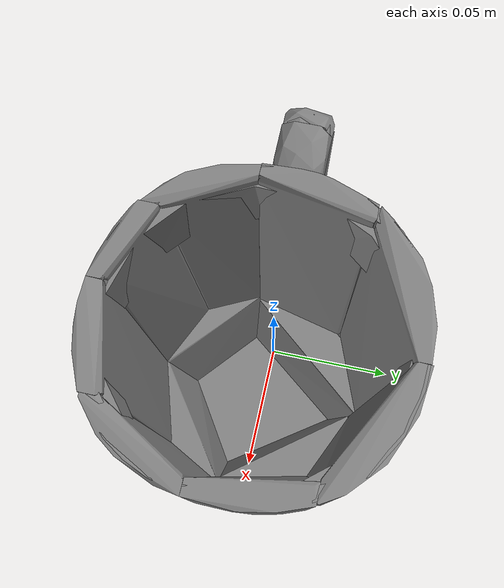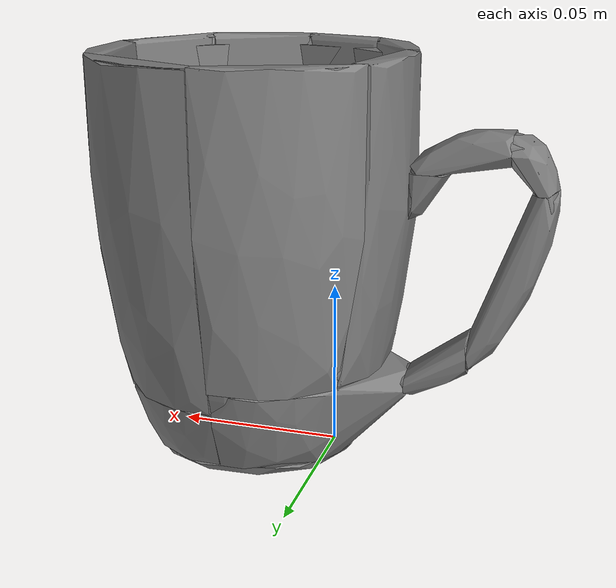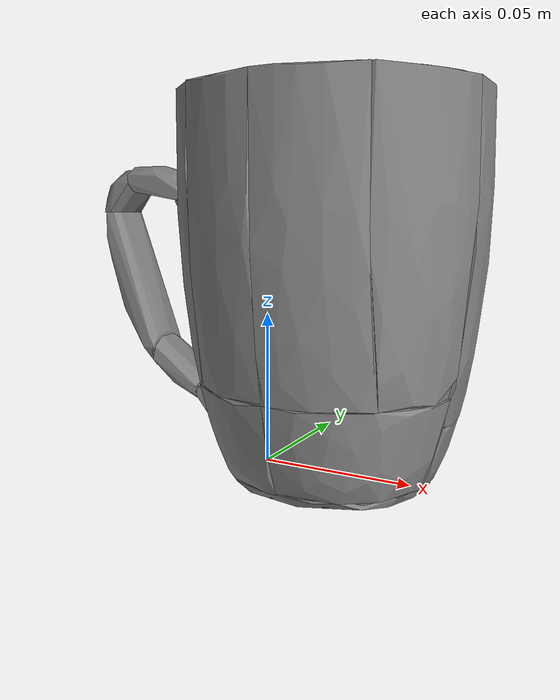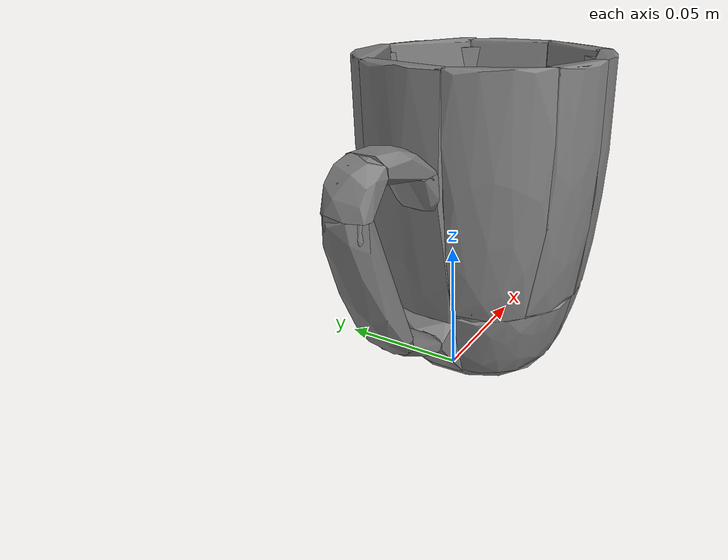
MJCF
<mujoco model="mug2">
  <asset>
    <mesh file="../../meshes/train/mug2/simple_mesh.stl" name="mug2_mesh" scale="1 1 1"/>
    <mesh file="../../meshes/train/mug2/mug2_hull_1.stl" name="mug2_hull_mesh_1" scale="1 1 1"/>
    <mesh file="../../meshes/train/mug2/mug2_hull_2.stl" name="mug2_hull_mesh_2" scale="1 1 1"/>
    <mesh file="../../meshes/train/mug2/mug2_hull_3.stl" name="mug2_hull_mesh_3" scale="1 1 1"/>
    <mesh file="../../meshes/train/mug2/mug2_hull_4.stl" name="mug2_hull_mesh_4" scale="1 1 1"/>
    <mesh file="../../meshes/train/mug2/mug2_hull_5.stl" name="mug2_hull_mesh_5" scale="1 1 1"/>
    <mesh file="../../meshes/train/mug2/mug2_hull_6.stl" name="mug2_hull_mesh_6" scale="1 1 1"/>
    <mesh file="../../meshes/train/mug2/mug2_hull_7.stl" name="mug2_hull_mesh_7" scale="1 1 1"/>
    <mesh file="../../meshes/train/mug2/mug2_hull_8.stl" name="mug2_hull_mesh_8" scale="1 1 1"/>
    <mesh file="../../meshes/train/mug2/mug2_hull_9.stl" name="mug2_hull_mesh_9" scale="1 1 1"/>
    <mesh file="../../meshes/train/mug2/mug2_hull_10.stl" name="mug2_hull_mesh_10" scale="1 1 1"/>
    <mesh file="../../meshes/train/mug2/mug2_hull_11.stl" name="mug2_hull_mesh_11" scale="1 1 1"/>
    <mesh file="../../meshes/train/mug2/mug2_hull_12.stl" name="mug2_hull_mesh_12" scale="1 1 1"/>
    <mesh file="../../meshes/train/mug2/mug2_hull_13.stl" name="mug2_hull_mesh_13" scale="1 1 1"/>
    <mesh file="../../meshes/train/mug2/mug2_hull_14.stl" name="mug2_hull_mesh_14" scale="1 1 1"/>
    <mesh file="../../meshes/train/mug2/mug2_hull_15.stl" name="mug2_hull_mesh_15" scale="1 1 1"/>
    <mesh file="../../meshes/train/mug2/mug2_hull_16.stl" name="mug2_hull_mesh_16" scale="1 1 1"/>
    <mesh file="../../meshes/train/mug2/mug2_hull_17.stl" name="mug2_hull_mesh_17" scale="1 1 1"/>
    <mesh file="../../meshes/train/mug2/mug2_hull_18.stl" name="mug2_hull_mesh_18" scale="1 1 1"/>
  </asset>
  <worldbody>
    <body>
      <body name="object">
        <geom pos="0 0 0" mesh="mug2_mesh" type="mesh" contype="0" conaffinity="0" group="1"/>
        <geom pos="0 0 0" mesh="mug2_hull_mesh_1" type="mesh" margin="0.001" solimp="0.998 0.998 0.001" solref="0.001 1" density="2000" friction="0.95 0.3 0.1" group="0" condim="4"/>
        <geom pos="0 0 0" mesh="mug2_hull_mesh_2" type="mesh" margin="0.001" solimp="0.998 0.998 0.001" solref="0.001 1" density="2000" friction="0.95 0.3 0.1" group="0" condim="4"/>
        <geom pos="0 0 0" mesh="mug2_hull_mesh_3" type="mesh" margin="0.001" solimp="0.998 0.998 0.001" solref="0.001 1" density="2000" friction="0.95 0.3 0.1" group="0" condim="4"/>
        <geom pos="0 0 0" mesh="mug2_hull_mesh_4" type="mesh" margin="0.001" solimp="0.998 0.998 0.001" solref="0.001 1" density="2000" friction="0.95 0.3 0.1" group="0" condim="4"/>
        <geom pos="0 0 0" mesh="mug2_hull_mesh_5" type="mesh" margin="0.001" solimp="0.998 0.998 0.001" solref="0.001 1" density="2000" friction="0.95 0.3 0.1" group="0" condim="4"/>
        <geom pos="0 0 0" mesh="mug2_hull_mesh_6" type="mesh" margin="0.001" solimp="0.998 0.998 0.001" solref="0.001 1" density="2000" friction="0.95 0.3 0.1" group="0" condim="4"/>
        <geom pos="0 0 0" mesh="mug2_hull_mesh_7" type="mesh" margin="0.001" solimp="0.998 0.998 0.001" solref="0.001 1" density="2000" friction="0.95 0.3 0.1" group="0" condim="4"/>
        <geom pos="0 0 0" mesh="mug2_hull_mesh_8" type="mesh" margin="0.001" solimp="0.998 0.998 0.001" solref="0.001 1" density="2000" friction="0.95 0.3 0.1" group="0" condim="4"/>
        <geom pos="0 0 0" mesh="mug2_hull_mesh_9" type="mesh" margin="0.001" solimp="0.998 0.998 0.001" solref="0.001 1" density="2000" friction="0.95 0.3 0.1" group="0" condim="4"/>
        <geom pos="0 0 0" mesh="mug2_hull_mesh_10" type="mesh" margin="0.001" solimp="0.998 0.998 0.001" solref="0.001 1" density="2000" friction="0.95 0.3 0.1" group="0" condim="4"/>
        <geom pos="0 0 0" mesh="mug2_hull_mesh_11" type="mesh" margin="0.001" solimp="0.998 0.998 0.001" solref="0.001 1" density="2000" friction="0.95 0.3 0.1" group="0" condim="4"/>
        <geom pos="0 0 0" mesh="mug2_hull_mesh_12" type="mesh" margin="0.001" solimp="0.998 0.998 0.001" solref="0.001 1" density="2000" friction="0.95 0.3 0.1" group="0" condim="4"/>
        <geom pos="0 0 0" mesh="mug2_hull_mesh_13" type="mesh" margin="0.001" solimp="0.998 0.998 0.001" solref="0.001 1" density="2000" friction="0.95 0.3 0.1" group="0" condim="4"/>
        <geom pos="0 0 0" mesh="mug2_hull_mesh_14" type="mesh" margin="0.001" solimp="0.998 0.998 0.001" solref="0.001 1" density="2000" friction="0.95 0.3 0.1" group="0" condim="4"/>
        <geom pos="0 0 0" mesh="mug2_hull_mesh_15" type="mesh" margin="0.001" solimp="0.998 0.998 0.001" solref="0.001 1" density="2000" friction="0.95 0.3 0.1" group="0" condim="4"/>
        <geom pos="0 0 0" mesh="mug2_hull_mesh_16" type="mesh" margin="0.001" solimp="0.998 0.998 0.001" solref="0.001 1" density="2000" friction="0.95 0.3 0.1" group="0" condim="4"/>
        <geom pos="0 0 0" mesh="mug2_hull_mesh_17" type="mesh" margin="0.001" solimp="0.998 0.998 0.001" solref="0.001 1" density="2000" friction="0.95 0.3 0.1" group="0" condim="4"/>
        <geom pos="0 0 0" mesh="mug2_hull_mesh_18" type="mesh" margin="0.001" solimp="0.998 0.998 0.001" solref="0.001 1" density="2000" friction="0.95 0.3 0.1" group="0" condim="4"/>
      </body>
      <site rgba="0 0 0 0" size="0.005" pos="0 0 -0.001" name="bottom_site"/>
      <site rgba="0 0 0 0" size="0.005" pos="0 0 0.02" name="top_site"/>
      <site rgba="0 0 0 0" size="0.005" pos="0.0375 0.02 0" name="horizontal_radius_site"/>
    </body>
  </worldbody>
</mujoco>
